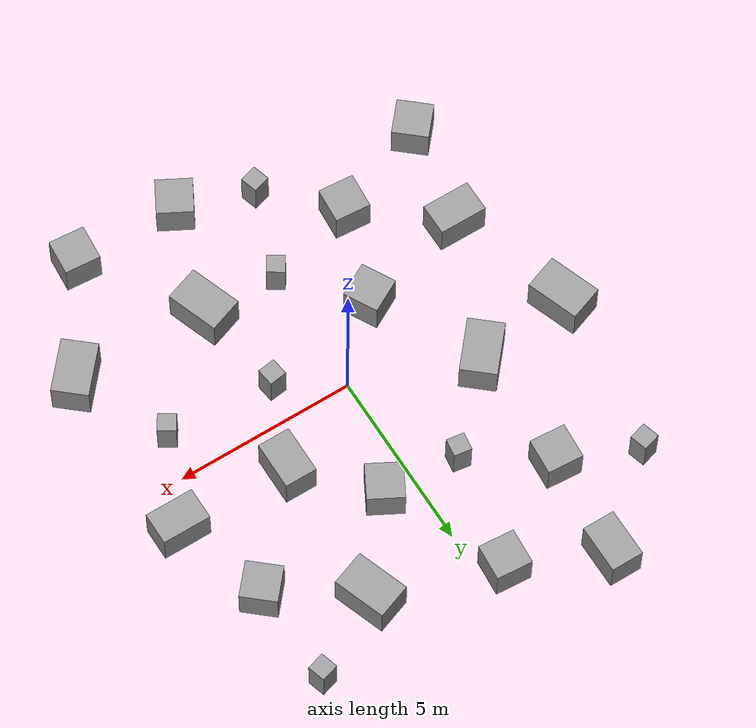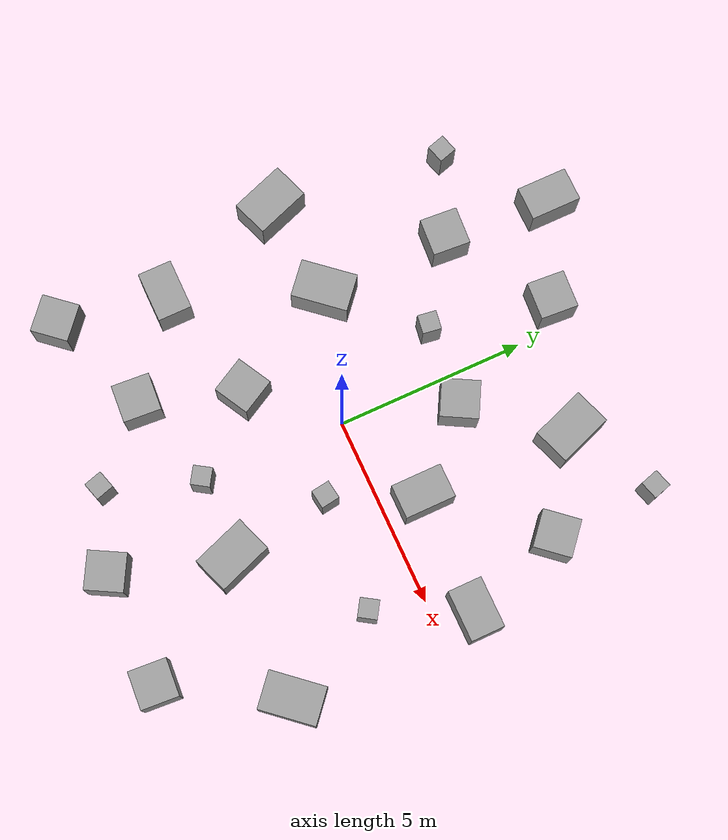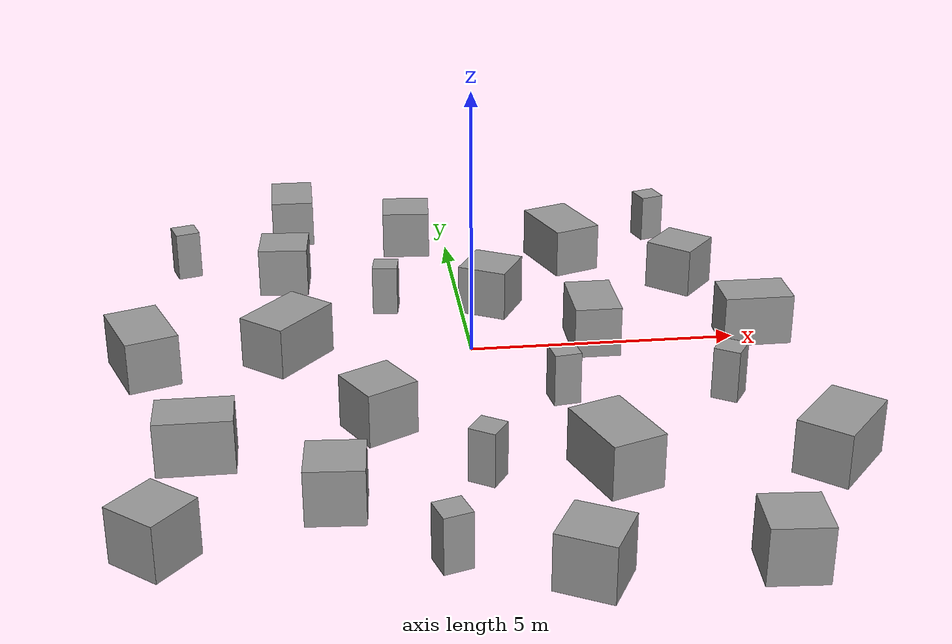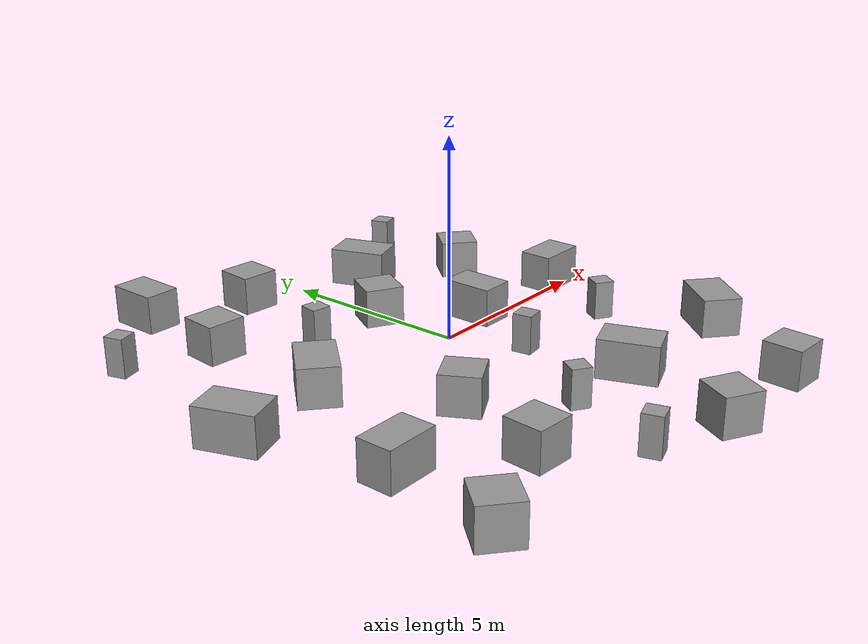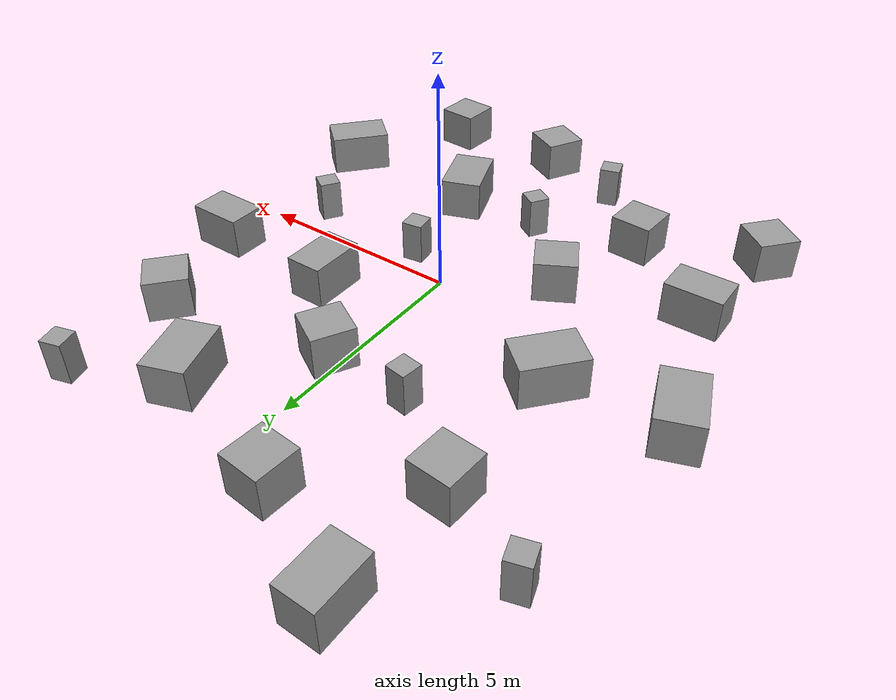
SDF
<sdf version="1.7">
 <model name="OnlyRectangles">
  <link name="link_0">
   <inertial>
    <mass>1</mass>
    <inertia>
     <ixx>0.166667</ixx>
     <ixy>0</ixy>
     <ixz>0</ixz>
     <iyy>0.166667</iyy>
     <iyz>0</iyz>
     <izz>0.166667</izz>
    </inertia>
   </inertial>
   <pose>-1.86233 -1.91106 0 0 -0 0.5</pose>
   <visual name="visual">
    <geometry><box><size>1 1 1</size></box></geometry>
    <material>
     <lighting>1</lighting>
     <script><uri>file://media/materials/scripts/gazebo.material</uri><name>Gazebo/Grey</name></script>
     <shader type="pixel"><normal_map>__default__</normal_map></shader>
     <ambient>0.3 0.3 0.3 1</ambient>
     <diffuse>0.7 0.7 0.7 1</diffuse>
     <specular>0.01 0.01 0.01 1</specular>
     <emissive>0 0 0 1</emissive>
    </material>
   </visual>
   <collision name="collision">
    <geometry><box><size>1 1 1</size></box></geometry>
    <surface>
     <friction>
      <ode><mu>1</mu><mu2>1</mu2><fdir1>0 0 0</fdir1><slip1>0</slip1><slip2>0</slip2></ode>
      <torsional>
       <coefficient>1</coefficient>
       <patch_radius>0</patch_radius>
       <surface_radius>0</surface_radius>
       <use_patch_radius>1</use_patch_radius>
       <ode><slip>0</slip></ode>
      </torsional>
     </friction>
     <bounce><restitution_coefficient>0</restitution_coefficient><threshold>1e+06</threshold></bounce>
     <contact>
      <collide_without_contact>0</collide_without_contact>
      <collide_without_contact_bitmask>1</collide_without_contact_bitmask>
      <collide_bitmask>1</collide_bitmask>
      <ode>
       <soft_cfm>0</soft_cfm>
       <soft_erp>0.2</soft_erp>
       <kp>1e+13</kp>
       <kd>1</kd>
       <max_vel>0.01</max_vel>
       <min_depth>0</min_depth>
      </ode>
      <bullet>
       <split_impulse>1</split_impulse>
       <split_impulse_penetration_threshold>-0.01</split_impulse_penetration_threshold>
       <soft_cfm>0</soft_cfm>
       <soft_erp>0.2</soft_erp>
       <kp>1e+13</kp>
       <kd>1</kd>
      </bullet>
     </contact>
    </surface>
   </collision>
  </link>
  <link name="link_0_clone">
   <inertial>
    <mass>1</mass>
    <inertia>
     <ixx>0.166667</ixx>
     <ixy>0</ixy>
     <ixz>0</ixz>
     <iyy>0.166667</iyy>
     <iyz>0</iyz>
     <izz>0.166667</izz>
    </inertia>
   </inertial>
   <pose>4.84886 3.66237 0 0 0 -2.28319</pose>
   <visual name="visual">
    <geometry><box><size>1 1 1</size></box></geometry>
    <material>
     <lighting>1</lighting>
     <script><uri>file://media/materials/scripts/gazebo.material</uri><name>Gazebo/Grey</name></script>
     <shader type="pixel"><normal_map>__default__</normal_map></shader>
     <ambient>0.3 0.3 0.3 1</ambient>
     <diffuse>0.7 0.7 0.7 1</diffuse>
     <specular>0.01 0.01 0.01 1</specular>
     <emissive>0 0 0 1</emissive>
    </material>
   </visual>
   <collision name="collision">
    <geometry><box><size>1 1 1</size></box></geometry>
    <surface>
     <friction>
      <ode><mu>1</mu><mu2>1</mu2><fdir1>0 0 0</fdir1><slip1>0</slip1><slip2>0</slip2></ode>
      <torsional>
       <coefficient>1</coefficient>
       <patch_radius>0</patch_radius>
       <surface_radius>0</surface_radius>
       <use_patch_radius>1</use_patch_radius>
       <ode><slip>0</slip></ode>
      </torsional>
     </friction>
     <bounce><restitution_coefficient>0</restitution_coefficient><threshold>1e+06</threshold></bounce>
     <contact>
      <collide_without_contact>0</collide_without_contact>
      <collide_without_contact_bitmask>1</collide_without_contact_bitmask>
      <collide_bitmask>1</collide_bitmask>
      <ode>
       <soft_cfm>0</soft_cfm>
       <soft_erp>0.2</soft_erp>
       <kp>1e+13</kp>
       <kd>1</kd>
       <max_vel>0.01</max_vel>
       <min_depth>0</min_depth>
      </ode>
      <bullet>
       <split_impulse>1</split_impulse>
       <split_impulse_penetration_threshold>-0.01</split_impulse_penetration_threshold>
       <soft_cfm>0</soft_cfm>
       <soft_erp>0.2</soft_erp>
       <kp>1e+13</kp>
       <kd>1</kd>
      </bullet>
     </contact>
    </surface>
   </collision>
  </link>
  <link name="link_0_clone_0">
   <inertial>
    <mass>1</mass>
    <inertia>
     <ixx>0.166667</ixx>
     <ixy>0</ixy>
     <ixz>0</ixz>
     <iyy>0.166667</iyy>
     <iyz>0</iyz>
     <izz>0.166667</izz>
    </inertia>
   </inertial>
   <pose>4.07382 -6.91562 0 0 -0 1.5</pose>
   <visual name="visual">
    <geometry><box><size>1 1 1</size></box></geometry>
    <material>
     <lighting>1</lighting>
     <script><uri>file://media/materials/scripts/gazebo.material</uri><name>Gazebo/Grey</name></script>
     <shader type="pixel"><normal_map>__default__</normal_map></shader>
     <ambient>0.3 0.3 0.3 1</ambient>
     <diffuse>0.7 0.7 0.7 1</diffuse>
     <specular>0.01 0.01 0.01 1</specular>
     <emissive>0 0 0 1</emissive>
    </material>
   </visual>
   <collision name="collision">
    <geometry><box><size>1 1 1</size></box></geometry>
    <surface>
     <friction>
      <ode><mu>1</mu><mu2>1</mu2><fdir1>0 0 0</fdir1><slip1>0</slip1><slip2>0</slip2></ode>
      <torsional>
       <coefficient>1</coefficient>
       <patch_radius>0</patch_radius>
       <surface_radius>0</surface_radius>
       <use_patch_radius>1</use_patch_radius>
       <ode><slip>0</slip></ode>
      </torsional>
     </friction>
     <bounce><restitution_coefficient>0</restitution_coefficient><threshold>1e+06</threshold></bounce>
     <contact>
      <collide_without_contact>0</collide_without_contact>
      <collide_without_contact_bitmask>1</collide_without_contact_bitmask>
      <collide_bitmask>1</collide_bitmask>
      <ode>
       <soft_cfm>0</soft_cfm>
       <soft_erp>0.2</soft_erp>
       <kp>1e+13</kp>
       <kd>1</kd>
       <max_vel>0.01</max_vel>
       <min_depth>0</min_depth>
      </ode>
      <bullet>
       <split_impulse>1</split_impulse>
       <split_impulse_penetration_threshold>-0.01</split_impulse_penetration_threshold>
       <soft_cfm>0</soft_cfm>
       <soft_erp>0.2</soft_erp>
       <kp>1e+13</kp>
       <kd>1</kd>
      </bullet>
     </contact>
    </surface>
   </collision>
  </link>
  <link name="link_0_clone_0_clone">
   <inertial>
    <mass>1</mass>
    <inertia>
     <ixx>0.166667</ixx>
     <ixy>0</ixy>
     <ixz>0</ixz>
     <iyy>0.166667</iyy>
     <iyz>0</iyz>
     <izz>0.166667</izz>
    </inertia>
   </inertial>
   <pose>-2.6988 -4.48768 0 0 -0 1.5</pose>
   <visual name="visual">
    <geometry><box><size>1 1 1</size></box></geometry>
    <material>
     <lighting>1</lighting>
     <script><uri>file://media/materials/scripts/gazebo.material</uri><name>Gazebo/Grey</name></script>
     <shader type="pixel"><normal_map>__default__</normal_map></shader>
     <ambient>0.3 0.3 0.3 1</ambient>
     <diffuse>0.7 0.7 0.7 1</diffuse>
     <specular>0.01 0.01 0.01 1</specular>
     <emissive>0 0 0 1</emissive>
    </material>
   </visual>
   <collision name="collision">
    <geometry><box><size>1 1 1</size></box></geometry>
    <surface>
     <friction>
      <ode><mu>1</mu><mu2>1</mu2><fdir1>0 0 0</fdir1><slip1>0</slip1><slip2>0</slip2></ode>
      <torsional>
       <coefficient>1</coefficient>
       <patch_radius>0</patch_radius>
       <surface_radius>0</surface_radius>
       <use_patch_radius>1</use_patch_radius>
       <ode><slip>0</slip></ode>
      </torsional>
     </friction>
     <bounce><restitution_coefficient>0</restitution_coefficient><threshold>1e+06</threshold></bounce>
     <contact>
      <collide_without_contact>0</collide_without_contact>
      <collide_without_contact_bitmask>1</collide_without_contact_bitmask>
      <collide_bitmask>1</collide_bitmask>
      <ode>
       <soft_cfm>0</soft_cfm>
       <soft_erp>0.2</soft_erp>
       <kp>1e+13</kp>
       <kd>1</kd>
       <max_vel>0.01</max_vel>
       <min_depth>0</min_depth>
      </ode>
      <bullet>
       <split_impulse>1</split_impulse>
       <split_impulse_penetration_threshold>-0.01</split_impulse_penetration_threshold>
       <soft_cfm>0</soft_cfm>
       <soft_erp>0.2</soft_erp>
       <kp>1e+13</kp>
       <kd>1</kd>
      </bullet>
     </contact>
    </surface>
   </collision>
  </link>
  <link name="link_0_clone_0_clone_0">
   <inertial>
    <mass>1</mass>
    <inertia>
     <ixx>0.166667</ixx>
     <ixy>0</ixy>
     <ixz>0</ixz>
     <iyy>0.166667</iyy>
     <iyz>0</iyz>
     <izz>0.166667</izz>
    </inertia>
   </inertial>
   <pose>-3.444 4.51632 0 0 -0 1.5</pose>
   <visual name="visual">
    <geometry><box><size>1 1 1</size></box></geometry>
    <material>
     <lighting>1</lighting>
     <script><uri>file://media/materials/scripts/gazebo.material</uri><name>Gazebo/Grey</name></script>
     <shader type="pixel"><normal_map>__default__</normal_map></shader>
     <ambient>0.3 0.3 0.3 1</ambient>
     <diffuse>0.7 0.7 0.7 1</diffuse>
     <specular>0.01 0.01 0.01 1</specular>
     <emissive>0 0 0 1</emissive>
    </material>
   </visual>
   <collision name="collision">
    <geometry><box><size>1 1 1</size></box></geometry>
    <surface>
     <friction>
      <ode><mu>1</mu><mu2>1</mu2><fdir1>0 0 0</fdir1><slip1>0</slip1><slip2>0</slip2></ode>
      <torsional>
       <coefficient>1</coefficient>
       <patch_radius>0</patch_radius>
       <surface_radius>0</surface_radius>
       <use_patch_radius>1</use_patch_radius>
       <ode><slip>0</slip></ode>
      </torsional>
     </friction>
     <bounce><restitution_coefficient>0</restitution_coefficient><threshold>1e+06</threshold></bounce>
     <contact>
      <collide_without_contact>0</collide_without_contact>
      <collide_without_contact_bitmask>1</collide_without_contact_bitmask>
      <collide_bitmask>1</collide_bitmask>
      <ode>
       <soft_cfm>0</soft_cfm>
       <soft_erp>0.2</soft_erp>
       <kp>1e+13</kp>
       <kd>1</kd>
       <max_vel>0.01</max_vel>
       <min_depth>0</min_depth>
      </ode>
      <bullet>
       <split_impulse>1</split_impulse>
       <split_impulse_penetration_threshold>-0.01</split_impulse_penetration_threshold>
       <soft_cfm>0</soft_cfm>
       <soft_erp>0.2</soft_erp>
       <kp>1e+13</kp>
       <kd>1</kd>
      </bullet>
     </contact>
    </surface>
   </collision>
  </link>
  <link name="link_0_clone_0_clone_1">
   <inertial>
    <mass>1</mass>
    <inertia>
     <ixx>0.166667</ixx>
     <ixy>0</ixy>
     <ixz>0</ixz>
     <iyy>0.166667</iyy>
     <iyz>0</iyz>
     <izz>0.166667</izz>
    </inertia>
   </inertial>
   <pose>-0.746789 6.29063 0 0 -0 1.5</pose>
   <visual name="visual">
    <geometry><box><size>1 1 1</size></box></geometry>
    <material>
     <lighting>1</lighting>
     <script><uri>file://media/materials/scripts/gazebo.material</uri><name>Gazebo/Grey</name></script>
     <shader type="pixel"><normal_map>__default__</normal_map></shader>
     <ambient>0.3 0.3 0.3 1</ambient>
     <diffuse>0.7 0.7 0.7 1</diffuse>
     <specular>0.01 0.01 0.01 1</specular>
     <emissive>0 0 0 1</emissive>
    </material>
   </visual>
   <collision name="collision">
    <geometry><box><size>1 1 1</size></box></geometry>
    <surface>
     <friction>
      <ode><mu>1</mu><mu2>1</mu2><fdir1>0 0 0</fdir1><slip1>0</slip1><slip2>0</slip2></ode>
      <torsional>
       <coefficient>1</coefficient>
       <patch_radius>0</patch_radius>
       <surface_radius>0</surface_radius>
       <use_patch_radius>1</use_patch_radius>
       <ode><slip>0</slip></ode>
      </torsional>
     </friction>
     <bounce><restitution_coefficient>0</restitution_coefficient><threshold>1e+06</threshold></bounce>
     <contact>
      <collide_without_contact>0</collide_without_contact>
      <collide_without_contact_bitmask>1</collide_without_contact_bitmask>
      <collide_bitmask>1</collide_bitmask>
      <ode>
       <soft_cfm>0</soft_cfm>
       <soft_erp>0.2</soft_erp>
       <kp>1e+13</kp>
       <kd>1</kd>
       <max_vel>0.01</max_vel>
       <min_depth>0</min_depth>
      </ode>
      <bullet>
       <split_impulse>1</split_impulse>
       <split_impulse_penetration_threshold>-0.01</split_impulse_penetration_threshold>
       <soft_cfm>0</soft_cfm>
       <soft_erp>0.2</soft_erp>
       <kp>1e+13</kp>
       <kd>1</kd>
      </bullet>
     </contact>
    </surface>
   </collision>
  </link>
  <link name="link_0_clone_1">
   <inertial>
    <mass>1</mass>
    <inertia>
     <ixx>0.166667</ixx>
     <ixy>0</ixy>
     <ixz>0</ixz>
     <iyy>0.166667</iyy>
     <iyz>0</iyz>
     <izz>0.166667</izz>
    </inertia>
   </inertial>
   <pose>-5.54051 5.42187 0 0 0 -1.28319</pose>
   <visual name="visual">
    <geometry><box><size>0.5 0.5 1</size></box></geometry>
    <material>
     <lighting>1</lighting>
     <script><uri>file://media/materials/scripts/gazebo.material</uri><name>Gazebo/Grey</name></script>
     <shader type="pixel"><normal_map>__default__</normal_map></shader>
     <ambient>0.3 0.3 0.3 1</ambient>
     <diffuse>0.7 0.7 0.7 1</diffuse>
     <specular>0.01 0.01 0.01 1</specular>
     <emissive>0 0 0 1</emissive>
    </material>
   </visual>
   <collision name="collision">
    <geometry><box><size>0.5 0.5 1</size></box></geometry>
    <surface>
     <friction>
      <ode><mu>1</mu><mu2>1</mu2><fdir1>0 0 0</fdir1><slip1>0</slip1><slip2>0</slip2></ode>
      <torsional>
       <coefficient>1</coefficient>
       <patch_radius>0</patch_radius>
       <surface_radius>0</surface_radius>
       <use_patch_radius>1</use_patch_radius>
       <ode><slip>0</slip></ode>
      </torsional>
     </friction>
     <bounce><restitution_coefficient>0</restitution_coefficient><threshold>1e+06</threshold></bounce>
     <contact>
      <collide_without_contact>0</collide_without_contact>
      <collide_without_contact_bitmask>1</collide_without_contact_bitmask>
      <collide_bitmask>1</collide_bitmask>
      <ode>
       <soft_cfm>0</soft_cfm>
       <soft_erp>0.2</soft_erp>
       <kp>1e+13</kp>
       <kd>1</kd>
       <max_vel>0.01</max_vel>
       <min_depth>0</min_depth>
      </ode>
      <bullet>
       <split_impulse>1</split_impulse>
       <split_impulse_penetration_threshold>-0.01</split_impulse_penetration_threshold>
       <soft_cfm>0</soft_cfm>
       <soft_erp>0.2</soft_erp>
       <kp>1e+13</kp>
       <kd>1</kd>
      </bullet>
     </contact>
    </surface>
   </collision>
  </link>
  <link name="link_0_clone_1_clone">
   <inertial>
    <mass>1</mass>
    <inertia>
     <ixx>0.166667</ixx>
     <ixy>0</ixy>
     <ixz>0</ixz>
     <iyy>0.166667</iyy>
     <iyz>0</iyz>
     <izz>0.166667</izz>
    </inertia>
   </inertial>
   <pose>-1.40181 3.10383 0 0 -0 3</pose>
   <visual name="visual">
    <geometry><box><size>0.5 0.5 1</size></box></geometry>
    <material>
     <lighting>1</lighting>
     <script><uri>file://media/materials/scripts/gazebo.material</uri><name>Gazebo/Grey</name></script>
     <shader type="pixel"><normal_map>__default__</normal_map></shader>
     <ambient>0.3 0.3 0.3 1</ambient>
     <diffuse>0.7 0.7 0.7 1</diffuse>
     <specular>0.01 0.01 0.01 1</specular>
     <emissive>0 0 0 1</emissive>
    </material>
   </visual>
   <collision name="collision">
    <geometry><box><size>0.5 0.5 1</size></box></geometry>
    <surface>
     <friction>
      <ode><mu>1</mu><mu2>1</mu2><fdir1>0 0 0</fdir1><slip1>0</slip1><slip2>0</slip2></ode>
      <torsional>
       <coefficient>1</coefficient>
       <patch_radius>0</patch_radius>
       <surface_radius>0</surface_radius>
       <use_patch_radius>1</use_patch_radius>
       <ode><slip>0</slip></ode>
      </torsional>
     </friction>
     <bounce><restitution_coefficient>0</restitution_coefficient><threshold>1e+06</threshold></bounce>
     <contact>
      <collide_without_contact>0</collide_without_contact>
      <collide_without_contact_bitmask>1</collide_without_contact_bitmask>
      <collide_bitmask>1</collide_bitmask>
      <ode>
       <soft_cfm>0</soft_cfm>
       <soft_erp>0.2</soft_erp>
       <kp>1e+13</kp>
       <kd>1</kd>
       <max_vel>0.01</max_vel>
       <min_depth>0</min_depth>
      </ode>
      <bullet>
       <split_impulse>1</split_impulse>
       <split_impulse_penetration_threshold>-0.01</split_impulse_penetration_threshold>
       <soft_cfm>0</soft_cfm>
       <soft_erp>0.2</soft_erp>
       <kp>1e+13</kp>
       <kd>1</kd>
      </bullet>
     </contact>
    </surface>
   </collision>
  </link>
  <link name="link_0_clone_1_clone_0">
   <inertial>
    <mass>1</mass>
    <inertia>
     <ixx>0.166667</ixx>
     <ixy>0</ixy>
     <ixz>0</ixz>
     <iyy>0.166667</iyy>
     <iyz>0</iyz>
     <izz>0.166667</izz>
    </inertia>
   </inertial>
   <pose>4.59222 -1.38594 0 0 -0 1</pose>
   <visual name="visual">
    <geometry><box><size>0.5 0.5 1</size></box></geometry>
    <material>
     <lighting>1</lighting>
     <script><uri>file://media/materials/scripts/gazebo.material</uri><name>Gazebo/Grey</name></script>
     <shader type="pixel"><normal_map>__default__</normal_map></shader>
     <ambient>0.3 0.3 0.3 1</ambient>
     <diffuse>0.7 0.7 0.7 1</diffuse>
     <specular>0.01 0.01 0.01 1</specular>
     <emissive>0 0 0 1</emissive>
    </material>
   </visual>
   <collision name="collision">
    <geometry><box><size>0.5 0.5 1</size></box></geometry>
    <surface>
     <friction>
      <ode><mu>1</mu><mu2>1</mu2><fdir1>0 0 0</fdir1><slip1>0</slip1><slip2>0</slip2></ode>
      <torsional>
       <coefficient>1</coefficient>
       <patch_radius>0</patch_radius>
       <surface_radius>0</surface_radius>
       <use_patch_radius>1</use_patch_radius>
       <ode><slip>0</slip></ode>
      </torsional>
     </friction>
     <bounce><restitution_coefficient>0</restitution_coefficient><threshold>1e+06</threshold></bounce>
     <contact>
      <collide_without_contact>0</collide_without_contact>
      <collide_without_contact_bitmask>1</collide_without_contact_bitmask>
      <collide_bitmask>1</collide_bitmask>
      <ode>
       <soft_cfm>0</soft_cfm>
       <soft_erp>0.2</soft_erp>
       <kp>1e+13</kp>
       <kd>1</kd>
       <max_vel>0.01</max_vel>
       <min_depth>0</min_depth>
      </ode>
      <bullet>
       <split_impulse>1</split_impulse>
       <split_impulse_penetration_threshold>-0.01</split_impulse_penetration_threshold>
       <soft_cfm>0</soft_cfm>
       <soft_erp>0.2</soft_erp>
       <kp>1e+13</kp>
       <kd>1</kd>
      </bullet>
     </contact>
    </surface>
   </collision>
  </link>
  <link name="link_0_clone_1_clone_0_clone">
   <inertial>
    <mass>1</mass>
    <inertia>
     <ixx>0.166667</ixx>
     <ixy>0</ixy>
     <ixz>0</ixz>
     <iyy>0.166667</iyy>
     <iyz>0</iyz>
     <izz>0.166667</izz>
    </inertia>
   </inertial>
   <pose>-0.160714 -3.79233 0 0 -0 1</pose>
   <visual name="visual">
    <geometry><box><size>0.5 0.5 1</size></box></geometry>
    <material>
     <lighting>1</lighting>
     <script><uri>file://media/materials/scripts/gazebo.material</uri><name>Gazebo/Grey</name></script>
     <shader type="pixel"><normal_map>__default__</normal_map></shader>
     <ambient>0.3 0.3 0.3 1</ambient>
     <diffuse>0.7 0.7 0.7 1</diffuse>
     <specular>0.01 0.01 0.01 1</specular>
     <emissive>0 0 0 1</emissive>
    </material>
   </visual>
   <collision name="collision">
    <geometry><box><size>0.5 0.5 1</size></box></geometry>
    <surface>
     <friction>
      <ode><mu>1</mu><mu2>1</mu2><fdir1>0 0 0</fdir1><slip1>0</slip1><slip2>0</slip2></ode>
      <torsional>
       <coefficient>1</coefficient>
       <patch_radius>0</patch_radius>
       <surface_radius>0</surface_radius>
       <use_patch_radius>1</use_patch_radius>
       <ode><slip>0</slip></ode>
      </torsional>
     </friction>
     <bounce><restitution_coefficient>0</restitution_coefficient><threshold>1e+06</threshold></bounce>
     <contact>
      <collide_without_contact>0</collide_without_contact>
      <collide_without_contact_bitmask>1</collide_without_contact_bitmask>
      <collide_bitmask>1</collide_bitmask>
      <ode>
       <soft_cfm>0</soft_cfm>
       <soft_erp>0.2</soft_erp>
       <kp>1e+13</kp>
       <kd>1</kd>
       <max_vel>0.01</max_vel>
       <min_depth>0</min_depth>
      </ode>
      <bullet>
       <split_impulse>1</split_impulse>
       <split_impulse_penetration_threshold>-0.01</split_impulse_penetration_threshold>
       <soft_cfm>0</soft_cfm>
       <soft_erp>0.2</soft_erp>
       <kp>1e+13</kp>
       <kd>1</kd>
      </bullet>
     </contact>
    </surface>
   </collision>
  </link>
  <link name="link_0_clone_1_clone_1">
   <inertial>
    <mass>1</mass>
    <inertia>
     <ixx>0.166667</ixx>
     <ixy>0</ixy>
     <ixz>0</ixz>
     <iyy>0.166667</iyy>
     <iyz>0</iyz>
     <izz>0.166667</izz>
    </inertia>
   </inertial>
   <pose>-1.00706 -6.22144 0 0 0 -1.28319</pose>
   <visual name="visual">
    <geometry><box><size>0.5 0.5 1</size></box></geometry>
    <material>
     <lighting>1</lighting>
     <script><uri>file://media/materials/scripts/gazebo.material</uri><name>Gazebo/Grey</name></script>
     <shader type="pixel"><normal_map>__default__</normal_map></shader>
     <ambient>0.3 0.3 0.3 1</ambient>
     <diffuse>0.7 0.7 0.7 1</diffuse>
     <specular>0.01 0.01 0.01 1</specular>
     <emissive>0 0 0 1</emissive>
    </material>
   </visual>
   <collision name="collision">
    <geometry><box><size>0.5 0.5 1</size></box></geometry>
    <surface>
     <friction>
      <ode><mu>1</mu><mu2>1</mu2><fdir1>0 0 0</fdir1><slip1>0</slip1><slip2>0</slip2></ode>
      <torsional>
       <coefficient>1</coefficient>
       <patch_radius>0</patch_radius>
       <surface_radius>0</surface_radius>
       <use_patch_radius>1</use_patch_radius>
       <ode><slip>0</slip></ode>
      </torsional>
     </friction>
     <bounce><restitution_coefficient>0</restitution_coefficient><threshold>1e+06</threshold></bounce>
     <contact>
      <collide_without_contact>0</collide_without_contact>
      <collide_without_contact_bitmask>1</collide_without_contact_bitmask>
      <collide_bitmask>1</collide_bitmask>
      <ode>
       <soft_cfm>0</soft_cfm>
       <soft_erp>0.2</soft_erp>
       <kp>1e+13</kp>
       <kd>1</kd>
       <max_vel>0.01</max_vel>
       <min_depth>0</min_depth>
      </ode>
      <bullet>
       <split_impulse>1</split_impulse>
       <split_impulse_penetration_threshold>-0.01</split_impulse_penetration_threshold>
       <soft_cfm>0</soft_cfm>
       <soft_erp>0.2</soft_erp>
       <kp>1e+13</kp>
       <kd>1</kd>
      </bullet>
     </contact>
    </surface>
   </collision>
  </link>
  <link name="link_0_clone_1_clone_1_clone">
   <inertial>
    <mass>1</mass>
    <inertia>
     <ixx>0.166667</ixx>
     <ixy>0</ixy>
     <ixz>0</ixz>
     <iyy>0.166667</iyy>
     <iyz>0</iyz>
     <izz>0.166667</izz>
    </inertia>
   </inertial>
   <pose>4.76877 6.4452 0 0 0 -1.28319</pose>
   <visual name="visual">
    <geometry><box><size>0.5 0.5 1</size></box></geometry>
    <material>
     <lighting>1</lighting>
     <script><uri>file://media/materials/scripts/gazebo.material</uri><name>Gazebo/Grey</name></script>
     <shader type="pixel"><normal_map>__default__</normal_map></shader>
     <ambient>0.3 0.3 0.3 1</ambient>
     <diffuse>0.7 0.7 0.7 1</diffuse>
     <specular>0.01 0.01 0.01 1</specular>
     <emissive>0 0 0 1</emissive>
    </material>
   </visual>
   <collision name="collision">
    <geometry><box><size>0.5 0.5 1</size></box></geometry>
    <surface>
     <friction>
      <ode><mu>1</mu><mu2>1</mu2><fdir1>0 0 0</fdir1><slip1>0</slip1><slip2>0</slip2></ode>
      <torsional>
       <coefficient>1</coefficient>
       <patch_radius>0</patch_radius>
       <surface_radius>0</surface_radius>
       <use_patch_radius>1</use_patch_radius>
       <ode><slip>0</slip></ode>
      </torsional>
     </friction>
     <bounce><restitution_coefficient>0</restitution_coefficient><threshold>1e+06</threshold></bounce>
     <contact>
      <collide_without_contact>0</collide_without_contact>
      <collide_without_contact_bitmask>1</collide_without_contact_bitmask>
      <collide_bitmask>1</collide_bitmask>
      <ode>
       <soft_cfm>0</soft_cfm>
       <soft_erp>0.2</soft_erp>
       <kp>1e+13</kp>
       <kd>1</kd>
       <max_vel>0.01</max_vel>
       <min_depth>0</min_depth>
      </ode>
      <bullet>
       <split_impulse>1</split_impulse>
       <split_impulse_penetration_threshold>-0.01</split_impulse_penetration_threshold>
       <soft_cfm>0</soft_cfm>
       <soft_erp>0.2</soft_erp>
       <kp>1e+13</kp>
       <kd>1</kd>
      </bullet>
     </contact>
    </surface>
   </collision>
  </link>
  <link name="link_0_clone_1_clone_clone">
   <inertial>
    <mass>1</mass>
    <inertia>
     <ixx>0.166667</ixx>
     <ixy>0</ixy>
     <ixz>0</ixz>
     <iyy>0.166667</iyy>
     <iyz>0</iyz>
     <izz>0.166667</izz>
    </inertia>
   </inertial>
   <pose>1.56007 -1.17133 0 0 0 -3</pose>
   <visual name="visual">
    <geometry><box><size>0.5 0.5 1</size></box></geometry>
    <material>
     <lighting>1</lighting>
     <script><uri>file://media/materials/scripts/gazebo.material</uri><name>Gazebo/Grey</name></script>
     <shader type="pixel"><normal_map>__default__</normal_map></shader>
     <ambient>0.3 0.3 0.3 1</ambient>
     <diffuse>0.7 0.7 0.7 1</diffuse>
     <specular>0.01 0.01 0.01 1</specular>
     <emissive>0 0 0 1</emissive>
    </material>
   </visual>
   <collision name="collision">
    <geometry><box><size>0.5 0.5 1</size></box></geometry>
    <surface>
     <friction>
      <ode><mu>1</mu><mu2>1</mu2><fdir1>0 0 0</fdir1><slip1>0</slip1><slip2>0</slip2></ode>
      <torsional>
       <coefficient>1</coefficient>
       <patch_radius>0</patch_radius>
       <surface_radius>0</surface_radius>
       <use_patch_radius>1</use_patch_radius>
       <ode><slip>0</slip></ode>
      </torsional>
     </friction>
     <bounce><restitution_coefficient>0</restitution_coefficient><threshold>1e+06</threshold></bounce>
     <contact>
      <collide_without_contact>0</collide_without_contact>
      <collide_without_contact_bitmask>1</collide_without_contact_bitmask>
      <collide_bitmask>1</collide_bitmask>
      <ode>
       <soft_cfm>0</soft_cfm>
       <soft_erp>0.2</soft_erp>
       <kp>1e+13</kp>
       <kd>1</kd>
       <max_vel>0.01</max_vel>
       <min_depth>0</min_depth>
      </ode>
      <bullet>
       <split_impulse>1</split_impulse>
       <split_impulse_penetration_threshold>-0.01</split_impulse_penetration_threshold>
       <soft_cfm>0</soft_cfm>
       <soft_erp>0.2</soft_erp>
       <kp>1e+13</kp>
       <kd>1</kd>
      </bullet>
     </contact>
    </surface>
   </collision>
  </link>
  <link name="link_0_clone_clone">
   <inertial>
    <mass>1</mass>
    <inertia>
     <ixx>0.166667</ixx>
     <ixy>0</ixy>
     <ixz>0</ixz>
     <iyy>0.166667</iyy>
     <iyz>0</iyz>
     <izz>0.166667</izz>
    </inertia>
   </inertial>
   <pose>-3.42205 1.07074 0 0 0 -2.28319</pose>
   <visual name="visual">
    <geometry><box><size>1.5 1 1</size></box></geometry>
    <material>
     <lighting>1</lighting>
     <script><uri>file://media/materials/scripts/gazebo.material</uri><name>Gazebo/Grey</name></script>
     <shader type="pixel"><normal_map>__default__</normal_map></shader>
     <ambient>0.3 0.3 0.3 1</ambient>
     <diffuse>0.7 0.7 0.7 1</diffuse>
     <specular>0.01 0.01 0.01 1</specular>
     <emissive>0 0 0 1</emissive>
    </material>
   </visual>
   <collision name="collision">
    <geometry><box><size>1.5 1 1</size></box></geometry>
    <surface>
     <friction>
      <ode><mu>1</mu><mu2>1</mu2><fdir1>0 0 0</fdir1><slip1>0</slip1><slip2>0</slip2></ode>
      <torsional>
       <coefficient>1</coefficient>
       <patch_radius>0</patch_radius>
       <surface_radius>0</surface_radius>
       <use_patch_radius>1</use_patch_radius>
       <ode><slip>0</slip></ode>
      </torsional>
     </friction>
     <bounce><restitution_coefficient>0</restitution_coefficient><threshold>1e+06</threshold></bounce>
     <contact>
      <collide_without_contact>0</collide_without_contact>
      <collide_without_contact_bitmask>1</collide_without_contact_bitmask>
      <collide_bitmask>1</collide_bitmask>
      <ode>
       <soft_cfm>0</soft_cfm>
       <soft_erp>0.2</soft_erp>
       <kp>1e+13</kp>
       <kd>1</kd>
       <max_vel>0.01</max_vel>
       <min_depth>0</min_depth>
      </ode>
      <bullet>
       <split_impulse>1</split_impulse>
       <split_impulse_penetration_threshold>-0.01</split_impulse_penetration_threshold>
       <soft_cfm>0</soft_cfm>
       <soft_erp>0.2</soft_erp>
       <kp>1e+13</kp>
       <kd>1</kd>
      </bullet>
     </contact>
    </surface>
   </collision>
  </link>
  <link name="link_0_clone_clone_0">
   <inertial>
    <mass>1</mass>
    <inertia>
     <ixx>0.166667</ixx>
     <ixy>0</ixy>
     <ixz>0</ixz>
     <iyy>0.166667</iyy>
     <iyz>0</iyz>
     <izz>0.166667</izz>
    </inertia>
   </inertial>
   <pose>-5.49965 -5.55208 0 0 0 -2.28319</pose>
   <visual name="visual">
    <geometry><box><size>1 1 1</size></box></geometry>
    <material>
     <lighting>1</lighting>
     <script><uri>file://media/materials/scripts/gazebo.material</uri><name>Gazebo/Grey</name></script>
     <shader type="pixel"><normal_map>__default__</normal_map></shader>
     <ambient>0.3 0.3 0.3 1</ambient>
     <diffuse>0.7 0.7 0.7 1</diffuse>
     <specular>0.01 0.01 0.01 1</specular>
     <emissive>0 0 0 1</emissive>
    </material>
   </visual>
   <collision name="collision">
    <geometry><box><size>1 1 1</size></box></geometry>
    <surface>
     <friction>
      <ode><mu>1</mu><mu2>1</mu2><fdir1>0 0 0</fdir1><slip1>0</slip1><slip2>0</slip2></ode>
      <torsional>
       <coefficient>1</coefficient>
       <patch_radius>0</patch_radius>
       <surface_radius>0</surface_radius>
       <use_patch_radius>1</use_patch_radius>
       <ode><slip>0</slip></ode>
      </torsional>
     </friction>
     <bounce><restitution_coefficient>0</restitution_coefficient><threshold>1e+06</threshold></bounce>
     <contact>
      <collide_without_contact>0</collide_without_contact>
      <collide_without_contact_bitmask>1</collide_without_contact_bitmask>
      <collide_bitmask>1</collide_bitmask>
      <ode>
       <soft_cfm>0</soft_cfm>
       <soft_erp>0.2</soft_erp>
       <kp>1e+13</kp>
       <kd>1</kd>
       <max_vel>0.01</max_vel>
       <min_depth>0</min_depth>
      </ode>
      <bullet>
       <split_impulse>1</split_impulse>
       <split_impulse_penetration_threshold>-0.01</split_impulse_penetration_threshold>
       <soft_cfm>0</soft_cfm>
       <soft_erp>0.2</soft_erp>
       <kp>1e+13</kp>
       <kd>1</kd>
      </bullet>
     </contact>
    </surface>
   </collision>
  </link>
  <link name="link_0_clone_clone_clone">
   <inertial>
    <mass>1</mass>
    <inertia>
     <ixx>0.166667</ixx>
     <ixy>0</ixy>
     <ixz>0</ixz>
     <iyy>0.166667</iyy>
     <iyz>0</iyz>
     <izz>0.166667</izz>
    </inertia>
   </inertial>
   <pose>1.96576 -3.90142 0 0 -0 1.91681</pose>
   <visual name="visual">
    <geometry><box><size>1.5 1 1</size></box></geometry>
    <material>
     <lighting>1</lighting>
     <script><uri>file://media/materials/scripts/gazebo.material</uri><name>Gazebo/Grey</name></script>
     <shader type="pixel"><normal_map>__default__</normal_map></shader>
     <ambient>0.3 0.3 0.3 1</ambient>
     <diffuse>0.7 0.7 0.7 1</diffuse>
     <specular>0.01 0.01 0.01 1</specular>
     <emissive>0 0 0 1</emissive>
    </material>
   </visual>
   <collision name="collision">
    <geometry><box><size>1.5 1 1</size></box></geometry>
    <surface>
     <friction>
      <ode><mu>1</mu><mu2>1</mu2><fdir1>0 0 0</fdir1><slip1>0</slip1><slip2>0</slip2></ode>
      <torsional>
       <coefficient>1</coefficient>
       <patch_radius>0</patch_radius>
       <surface_radius>0</surface_radius>
       <use_patch_radius>1</use_patch_radius>
       <ode><slip>0</slip></ode>
      </torsional>
     </friction>
     <bounce><restitution_coefficient>0</restitution_coefficient><threshold>1e+06</threshold></bounce>
     <contact>
      <collide_without_contact>0</collide_without_contact>
      <collide_without_contact_bitmask>1</collide_without_contact_bitmask>
      <collide_bitmask>1</collide_bitmask>
      <ode>
       <soft_cfm>0</soft_cfm>
       <soft_erp>0.2</soft_erp>
       <kp>1e+13</kp>
       <kd>1</kd>
       <max_vel>0.01</max_vel>
       <min_depth>0</min_depth>
      </ode>
      <bullet>
       <split_impulse>1</split_impulse>
       <split_impulse_penetration_threshold>-0.01</split_impulse_penetration_threshold>
       <soft_cfm>0</soft_cfm>
       <soft_erp>0.2</soft_erp>
       <kp>1e+13</kp>
       <kd>1</kd>
      </bullet>
     </contact>
    </surface>
   </collision>
  </link>
  <link name="link_0_clone_clone_clone_0">
   <inertial>
    <mass>1</mass>
    <inertia>
     <ixx>0.166667</ixx>
     <ixy>0</ixy>
     <ixz>0</ixz>
     <iyy>0.166667</iyy>
     <iyz>0</iyz>
     <izz>0.166667</izz>
    </inertia>
   </inertial>
   <pose>5.78939 -3.9819 0 0 0 -2.28319</pose>
   <visual name="visual">
    <geometry><box><size>1.5 1 1</size></box></geometry>
    <material>
     <lighting>1</lighting>
     <script><uri>file://media/materials/scripts/gazebo.material</uri><name>Gazebo/Grey</name></script>
     <shader type="pixel"><normal_map>__default__</normal_map></shader>
     <ambient>0.3 0.3 0.3 1</ambient>
     <diffuse>0.7 0.7 0.7 1</diffuse>
     <specular>0.01 0.01 0.01 1</specular>
     <emissive>0 0 0 1</emissive>
    </material>
   </visual>
   <collision name="collision">
    <geometry><box><size>1.5 1 1</size></box></geometry>
    <surface>
     <friction>
      <ode><mu>1</mu><mu2>1</mu2><fdir1>0 0 0</fdir1><slip1>0</slip1><slip2>0</slip2></ode>
      <torsional>
       <coefficient>1</coefficient>
       <patch_radius>0</patch_radius>
       <surface_radius>0</surface_radius>
       <use_patch_radius>1</use_patch_radius>
       <ode><slip>0</slip></ode>
      </torsional>
     </friction>
     <bounce><restitution_coefficient>0</restitution_coefficient><threshold>1e+06</threshold></bounce>
     <contact>
      <collide_without_contact>0</collide_without_contact>
      <collide_without_contact_bitmask>1</collide_without_contact_bitmask>
      <collide_bitmask>1</collide_bitmask>
      <ode>
       <soft_cfm>0</soft_cfm>
       <soft_erp>0.2</soft_erp>
       <kp>1e+13</kp>
       <kd>1</kd>
       <max_vel>0.01</max_vel>
       <min_depth>0</min_depth>
      </ode>
      <bullet>
       <split_impulse>1</split_impulse>
       <split_impulse_penetration_threshold>-0.01</split_impulse_penetration_threshold>
       <soft_cfm>0</soft_cfm>
       <soft_erp>0.2</soft_erp>
       <kp>1e+13</kp>
       <kd>1</kd>
      </bullet>
     </contact>
    </surface>
   </collision>
  </link>
  <link name="link_0_clone_clone_clone_clone">
   <inertial>
    <mass>1</mass>
    <inertia>
     <ixx>0.166667</ixx>
     <ixy>0</ixy>
     <ixz>0</ixz>
     <iyy>0.166667</iyy>
     <iyz>0</iyz>
     <izz>0.166667</izz>
    </inertia>
   </inertial>
   <pose>2.50124 1.09194 0 0 -0 0</pose>
   <visual name="visual">
    <geometry><box><size>0.9 1.35 1</size></box></geometry>
    <material>
     <lighting>1</lighting>
     <script><uri>file://media/materials/scripts/gazebo.material</uri><name>Gazebo/Grey</name></script>
     <shader type="pixel"><normal_map>__default__</normal_map></shader>
     <ambient>0.3 0.3 0.3 1</ambient>
     <diffuse>0.7 0.7 0.7 1</diffuse>
     <specular>0.01 0.01 0.01 1</specular>
     <emissive>0 0 0 1</emissive>
    </material>
   </visual>
   <collision name="collision">
    <geometry><box><size>0.9 1.35 1</size></box></geometry>
    <surface>
     <friction>
      <ode><mu>1</mu><mu2>1</mu2><fdir1>0 0 0</fdir1><slip1>0</slip1><slip2>0</slip2></ode>
      <torsional>
       <coefficient>1</coefficient>
       <patch_radius>0</patch_radius>
       <surface_radius>0</surface_radius>
       <use_patch_radius>1</use_patch_radius>
       <ode><slip>0</slip></ode>
      </torsional>
     </friction>
     <bounce><restitution_coefficient>0</restitution_coefficient><threshold>1e+06</threshold></bounce>
     <contact>
      <collide_without_contact>0</collide_without_contact>
      <collide_without_contact_bitmask>1</collide_without_contact_bitmask>
      <collide_bitmask>1</collide_bitmask>
      <ode>
       <soft_cfm>0</soft_cfm>
       <soft_erp>0.2</soft_erp>
       <kp>1e+13</kp>
       <kd>1</kd>
       <max_vel>0.01</max_vel>
       <min_depth>0</min_depth>
      </ode>
      <bullet>
       <split_impulse>1</split_impulse>
       <split_impulse_penetration_threshold>-0.01</split_impulse_penetration_threshold>
       <soft_cfm>0</soft_cfm>
       <soft_erp>0.2</soft_erp>
       <kp>1e+13</kp>
       <kd>1</kd>
      </bullet>
     </contact>
    </surface>
   </collision>
  </link>
  <link name="link_0_clone_clone_clone_clone_0">
   <inertial>
    <mass>1</mass>
    <inertia>
     <ixx>0.166667</ixx>
     <ixy>0</ixy>
     <ixz>0</ixz>
     <iyy>0.166667</iyy>
     <iyz>0</iyz>
     <izz>0.166667</izz>
    </inertia>
   </inertial>
   <pose>2.56882 5.19651 0 0 -0 1.91681</pose>
   <visual name="visual">
    <geometry><box><size>1.5 1 1</size></box></geometry>
    <material>
     <lighting>1</lighting>
     <script><uri>file://media/materials/scripts/gazebo.material</uri><name>Gazebo/Grey</name></script>
     <shader type="pixel"><normal_map>__default__</normal_map></shader>
     <ambient>0.3 0.3 0.3 1</ambient>
     <diffuse>0.7 0.7 0.7 1</diffuse>
     <specular>0.01 0.01 0.01 1</specular>
     <emissive>0 0 0 1</emissive>
    </material>
   </visual>
   <collision name="collision">
    <geometry><box><size>1.5 1 1</size></box></geometry>
    <surface>
     <friction>
      <ode><mu>1</mu><mu2>1</mu2><fdir1>0 0 0</fdir1><slip1>0</slip1><slip2>0</slip2></ode>
      <torsional>
       <coefficient>1</coefficient>
       <patch_radius>0</patch_radius>
       <surface_radius>0</surface_radius>
       <use_patch_radius>1</use_patch_radius>
       <ode><slip>0</slip></ode>
      </torsional>
     </friction>
     <bounce><restitution_coefficient>0</restitution_coefficient><threshold>1e+06</threshold></bounce>
     <contact>
      <collide_without_contact>0</collide_without_contact>
      <collide_without_contact_bitmask>1</collide_without_contact_bitmask>
      <collide_bitmask>1</collide_bitmask>
      <ode>
       <soft_cfm>0</soft_cfm>
       <soft_erp>0.2</soft_erp>
       <kp>1e+13</kp>
       <kd>1</kd>
       <max_vel>0.01</max_vel>
       <min_depth>0</min_depth>
      </ode>
      <bullet>
       <split_impulse>1</split_impulse>
       <split_impulse_penetration_threshold>-0.01</split_impulse_penetration_threshold>
       <soft_cfm>0</soft_cfm>
       <soft_erp>0.2</soft_erp>
       <kp>1e+13</kp>
       <kd>1</kd>
      </bullet>
     </contact>
    </surface>
   </collision>
  </link>
  <link name="link_0_clone_clone_clone_clone_1">
   <inertial>
    <mass>1</mass>
    <inertia>
     <ixx>0.166667</ixx>
     <ixy>0</ixy>
     <ixz>0</ixz>
     <iyy>0.166667</iyy>
     <iyz>0</iyz>
     <izz>0.166667</izz>
    </inertia>
   </inertial>
   <pose>-6.1271 0.756845 0 0 -0 1.91681</pose>
   <visual name="visual">
    <geometry><box><size>1.5 1 1</size></box></geometry>
    <material>
     <lighting>1</lighting>
     <script><uri>file://media/materials/scripts/gazebo.material</uri><name>Gazebo/Grey</name></script>
     <shader type="pixel"><normal_map>__default__</normal_map></shader>
     <ambient>0.3 0.3 0.3 1</ambient>
     <diffuse>0.7 0.7 0.7 1</diffuse>
     <specular>0.01 0.01 0.01 1</specular>
     <emissive>0 0 0 1</emissive>
    </material>
   </visual>
   <collision name="collision">
    <geometry><box><size>1.5 1 1</size></box></geometry>
    <surface>
     <friction>
      <ode><mu>1</mu><mu2>1</mu2><fdir1>0 0 0</fdir1><slip1>0</slip1><slip2>0</slip2></ode>
      <torsional>
       <coefficient>1</coefficient>
       <patch_radius>0</patch_radius>
       <surface_radius>0</surface_radius>
       <use_patch_radius>1</use_patch_radius>
       <ode><slip>0</slip></ode>
      </torsional>
     </friction>
     <bounce><restitution_coefficient>0</restitution_coefficient><threshold>1e+06</threshold></bounce>
     <contact>
      <collide_without_contact>0</collide_without_contact>
      <collide_without_contact_bitmask>1</collide_without_contact_bitmask>
      <collide_bitmask>1</collide_bitmask>
      <ode>
       <soft_cfm>0</soft_cfm>
       <soft_erp>0.2</soft_erp>
       <kp>1e+13</kp>
       <kd>1</kd>
       <max_vel>0.01</max_vel>
       <min_depth>0</min_depth>
      </ode>
      <bullet>
       <split_impulse>1</split_impulse>
       <split_impulse_penetration_threshold>-0.01</split_impulse_penetration_threshold>
       <soft_cfm>0</soft_cfm>
       <soft_erp>0.2</soft_erp>
       <kp>1e+13</kp>
       <kd>1</kd>
      </bullet>
     </contact>
    </surface>
   </collision>
  </link>
  <link name="link_0_clone_clone_clone_clone_clone">
   <inertial>
    <mass>1</mass>
    <inertia>
     <ixx>0.166667</ixx>
     <ixy>0</ixy>
     <ixz>0</ixz>
     <iyy>0.166667</iyy>
     <iyz>0</iyz>
     <izz>0.166667</izz>
    </inertia>
   </inertial>
   <pose>-4.99595 -2.71642 0 0 0 -1.57</pose>
   <visual name="visual">
    <geometry><box><size>0.9 1.35 1</size></box></geometry>
    <material>
     <lighting>1</lighting>
     <script><uri>file://media/materials/scripts/gazebo.material</uri><name>Gazebo/Grey</name></script>
     <shader type="pixel"><normal_map>__default__</normal_map></shader>
     <ambient>0.3 0.3 0.3 1</ambient>
     <diffuse>0.7 0.7 0.7 1</diffuse>
     <specular>0.01 0.01 0.01 1</specular>
     <emissive>0 0 0 1</emissive>
    </material>
   </visual>
   <collision name="collision">
    <geometry><box><size>0.9 1.35 1</size></box></geometry>
    <surface>
     <friction>
      <ode><mu>1</mu><mu2>1</mu2><fdir1>0 0 0</fdir1><slip1>0</slip1><slip2>0</slip2></ode>
      <torsional>
       <coefficient>1</coefficient>
       <patch_radius>0</patch_radius>
       <surface_radius>0</surface_radius>
       <use_patch_radius>1</use_patch_radius>
       <ode><slip>0</slip></ode>
      </torsional>
     </friction>
     <bounce><restitution_coefficient>0</restitution_coefficient><threshold>1e+06</threshold></bounce>
     <contact>
      <collide_without_contact>0</collide_without_contact>
      <collide_without_contact_bitmask>1</collide_without_contact_bitmask>
      <collide_bitmask>1</collide_bitmask>
      <ode>
       <soft_cfm>0</soft_cfm>
       <soft_erp>0.2</soft_erp>
       <kp>1e+13</kp>
       <kd>1</kd>
       <max_vel>0.01</max_vel>
       <min_depth>0</min_depth>
      </ode>
      <bullet>
       <split_impulse>1</split_impulse>
       <split_impulse_penetration_threshold>-0.01</split_impulse_penetration_threshold>
       <soft_cfm>0</soft_cfm>
       <soft_erp>0.2</soft_erp>
       <kp>1e+13</kp>
       <kd>1</kd>
      </bullet>
     </contact>
    </surface>
   </collision>
  </link>
  <link name="link_0_clone_clone_clone_clone_clone_0">
   <inertial>
    <mass>1</mass>
    <inertia>
     <ixx>0.166667</ixx>
     <ixy>0</ixy>
     <ixz>0</ixz>
     <iyy>0.166667</iyy>
     <iyz>0</iyz>
     <izz>0.166667</izz>
    </inertia>
   </inertial>
   <pose>-3.24761 7.41678 0 0 -0 0</pose>
   <visual name="visual">
    <geometry><box><size>0.9 1.35 1</size></box></geometry>
    <material>
     <lighting>1</lighting>
     <script><uri>file://media/materials/scripts/gazebo.material</uri><name>Gazebo/Grey</name></script>
     <shader type="pixel"><normal_map>__default__</normal_map></shader>
     <ambient>0.3 0.3 0.3 1</ambient>
     <diffuse>0.7 0.7 0.7 1</diffuse>
     <specular>0.01 0.01 0.01 1</specular>
     <emissive>0 0 0 1</emissive>
    </material>
   </visual>
   <collision name="collision">
    <geometry><box><size>0.9 1.35 1</size></box></geometry>
    <surface>
     <friction>
      <ode><mu>1</mu><mu2>1</mu2><fdir1>0 0 0</fdir1><slip1>0</slip1><slip2>0</slip2></ode>
      <torsional>
       <coefficient>1</coefficient>
       <patch_radius>0</patch_radius>
       <surface_radius>0</surface_radius>
       <use_patch_radius>1</use_patch_radius>
       <ode><slip>0</slip></ode>
      </torsional>
     </friction>
     <bounce><restitution_coefficient>0</restitution_coefficient><threshold>1e+06</threshold></bounce>
     <contact>
      <collide_without_contact>0</collide_without_contact>
      <collide_without_contact_bitmask>1</collide_without_contact_bitmask>
      <collide_bitmask>1</collide_bitmask>
      <ode>
       <soft_cfm>0</soft_cfm>
       <soft_erp>0.2</soft_erp>
       <kp>1e+13</kp>
       <kd>1</kd>
       <max_vel>0.01</max_vel>
       <min_depth>0</min_depth>
      </ode>
      <bullet>
       <split_impulse>1</split_impulse>
       <split_impulse_penetration_threshold>-0.01</split_impulse_penetration_threshold>
       <soft_cfm>0</soft_cfm>
       <soft_erp>0.2</soft_erp>
       <kp>1e+13</kp>
       <kd>1</kd>
      </bullet>
     </contact>
    </surface>
   </collision>
  </link>
  <link name="link_0_clone_clone_clone_clone_clone_clone">
   <inertial>
    <mass>1</mass>
    <inertia>
     <ixx>0.166667</ixx>
     <ixy>0</ixy>
     <ixz>0</ixz>
     <iyy>0.166667</iyy>
     <iyz>0</iyz>
     <izz>0.166667</izz>
    </inertia>
   </inertial>
   <pose>5.70487 1.01492 0 0 0 -1.57</pose>
   <visual name="visual">
    <geometry><box><size>0.9 1.35 1</size></box></geometry>
    <material>
     <lighting>1</lighting>
     <script><uri>file://media/materials/scripts/gazebo.material</uri><name>Gazebo/Grey</name></script>
     <shader type="pixel"><normal_map>__default__</normal_map></shader>
     <ambient>0.3 0.3 0.3 1</ambient>
     <diffuse>0.7 0.7 0.7 1</diffuse>
     <specular>0.01 0.01 0.01 1</specular>
     <emissive>0 0 0 1</emissive>
    </material>
   </visual>
   <collision name="collision">
    <geometry><box><size>0.9 1.35 1</size></box></geometry>
    <surface>
     <friction>
      <ode><mu>1</mu><mu2>1</mu2><fdir1>0 0 0</fdir1><slip1>0</slip1><slip2>0</slip2></ode>
      <torsional>
       <coefficient>1</coefficient>
       <patch_radius>0</patch_radius>
       <surface_radius>0</surface_radius>
       <use_patch_radius>1</use_patch_radius>
       <ode><slip>0</slip></ode>
      </torsional>
     </friction>
     <bounce><restitution_coefficient>0</restitution_coefficient><threshold>1e+06</threshold></bounce>
     <contact>
      <collide_without_contact>0</collide_without_contact>
      <collide_without_contact_bitmask>1</collide_without_contact_bitmask>
      <collide_bitmask>1</collide_bitmask>
      <ode>
       <soft_cfm>0</soft_cfm>
       <soft_erp>0.2</soft_erp>
       <kp>1e+13</kp>
       <kd>1</kd>
       <max_vel>0.01</max_vel>
       <min_depth>0</min_depth>
      </ode>
      <bullet>
       <split_impulse>1</split_impulse>
       <split_impulse_penetration_threshold>-0.01</split_impulse_penetration_threshold>
       <soft_cfm>0</soft_cfm>
       <soft_erp>0.2</soft_erp>
       <kp>1e+13</kp>
       <kd>1</kd>
      </bullet>
     </contact>
    </surface>
   </collision>
  </link>
  <link name="link_1">
   <inertial>
    <mass>1</mass>
    <inertia>
     <ixx>0.166667</ixx>
     <ixy>0</ixy>
     <ixz>0</ixz>
     <iyy>0.166667</iyy>
     <iyz>0</iyz>
     <izz>0.166667</izz>
    </inertia>
   </inertial>
   <pose>0.736097 2.95698 0 0 0 -0.5</pose>
   <visual name="visual">
    <geometry><box><size>1 1 1</size></box></geometry>
    <material>
     <lighting>1</lighting>
     <script><uri>file://media/materials/scripts/gazebo.material</uri><name>Gazebo/Grey</name></script>
     <shader type="pixel"><normal_map>__default__</normal_map></shader>
     <ambient>0.3 0.3 0.3 1</ambient>
     <diffuse>0.7 0.7 0.7 1</diffuse>
     <specular>0.01 0.01 0.01 1</specular>
     <emissive>0 0 0 1</emissive>
    </material>
   </visual>
   <collision name="collision">
    <geometry><box><size>1 1 1</size></box></geometry>
    <surface>
     <friction>
      <ode><mu>1</mu><mu2>1</mu2><fdir1>0 0 0</fdir1><slip1>0</slip1><slip2>0</slip2></ode>
      <torsional>
       <coefficient>1</coefficient>
       <patch_radius>0</patch_radius>
       <surface_radius>0</surface_radius>
       <use_patch_radius>1</use_patch_radius>
       <ode><slip>0</slip></ode>
      </torsional>
     </friction>
     <bounce><restitution_coefficient>0</restitution_coefficient><threshold>1e+06</threshold></bounce>
     <contact>
      <collide_without_contact>0</collide_without_contact>
      <collide_without_contact_bitmask>1</collide_without_contact_bitmask>
      <collide_bitmask>1</collide_bitmask>
      <ode>
       <soft_cfm>0</soft_cfm>
       <soft_erp>0.2</soft_erp>
       <kp>1e+13</kp>
       <kd>1</kd>
       <max_vel>0.01</max_vel>
       <min_depth>0</min_depth>
      </ode>
      <bullet>
       <split_impulse>1</split_impulse>
       <split_impulse_penetration_threshold>-0.01</split_impulse_penetration_threshold>
       <soft_cfm>0</soft_cfm>
       <soft_erp>0.2</soft_erp>
       <kp>1e+13</kp>
       <kd>1</kd>
      </bullet>
     </contact>
    </surface>
   </collision>
  </link>
  <link name="link_1_clone">
   <inertial>
    <mass>1</mass>
    <inertia>
     <ixx>0.166667</ixx>
     <ixy>0</ixy>
     <ixz>0</ixz>
     <iyy>0.166667</iyy>
     <iyz>0</iyz>
     <izz>0.166667</izz>
    </inertia>
   </inertial>
   <pose>1.04443 -6.90768 0 0 0 -0.5</pose>
   <visual name="visual">
    <geometry><box><size>1 1 1</size></box></geometry>
    <material>
     <lighting>1</lighting>
     <script><uri>file://media/materials/scripts/gazebo.material</uri><name>Gazebo/Grey</name></script>
     <shader type="pixel"><normal_map>__default__</normal_map></shader>
     <ambient>0.3 0.3 0.3 1</ambient>
     <diffuse>0.7 0.7 0.7 1</diffuse>
     <specular>0.01 0.01 0.01 1</specular>
     <emissive>0 0 0 1</emissive>
    </material>
   </visual>
   <collision name="collision">
    <geometry><box><size>1 1 1</size></box></geometry>
    <surface>
     <friction>
      <ode><mu>1</mu><mu2>1</mu2><fdir1>0 0 0</fdir1><slip1>0</slip1><slip2>0</slip2></ode>
      <torsional>
       <coefficient>1</coefficient>
       <patch_radius>0</patch_radius>
       <surface_radius>0</surface_radius>
       <use_patch_radius>1</use_patch_radius>
       <ode><slip>0</slip></ode>
      </torsional>
     </friction>
     <bounce><restitution_coefficient>0</restitution_coefficient><threshold>1e+06</threshold></bounce>
     <contact>
      <collide_without_contact>0</collide_without_contact>
      <collide_without_contact_bitmask>1</collide_without_contact_bitmask>
      <collide_bitmask>1</collide_bitmask>
      <ode>
       <soft_cfm>0</soft_cfm>
       <soft_erp>0.2</soft_erp>
       <kp>1e+13</kp>
       <kd>1</kd>
       <max_vel>0.01</max_vel>
       <min_depth>0</min_depth>
      </ode>
      <bullet>
       <split_impulse>1</split_impulse>
       <split_impulse_penetration_threshold>-0.01</split_impulse_penetration_threshold>
       <soft_cfm>0</soft_cfm>
       <soft_erp>0.2</soft_erp>
       <kp>1e+13</kp>
       <kd>1</kd>
      </bullet>
     </contact>
    </surface>
   </collision>
  </link>
  <static>0</static>
 </model>
</sdf>
